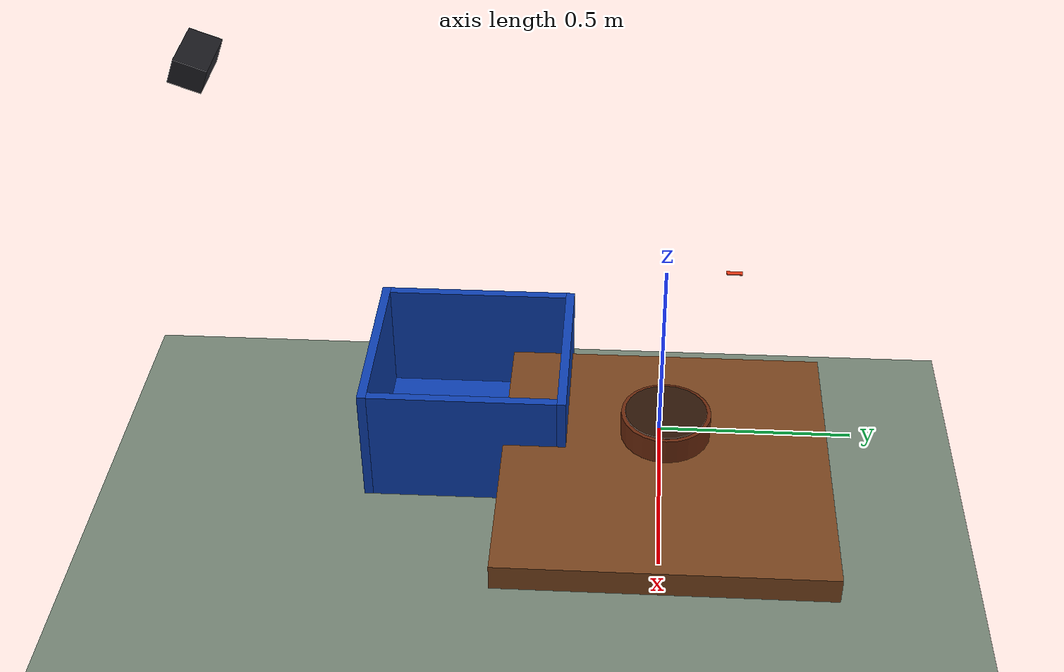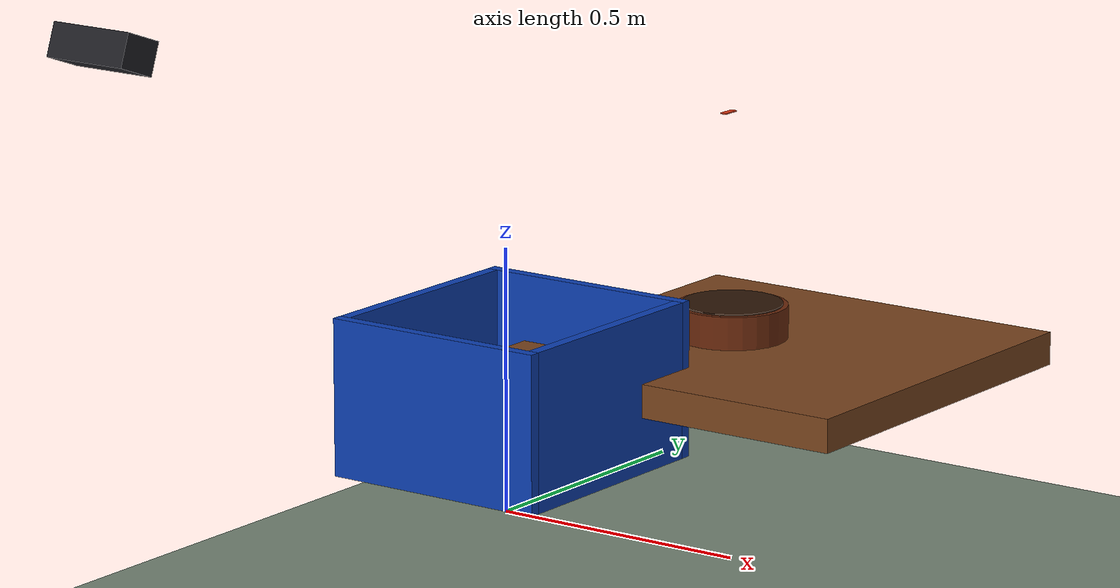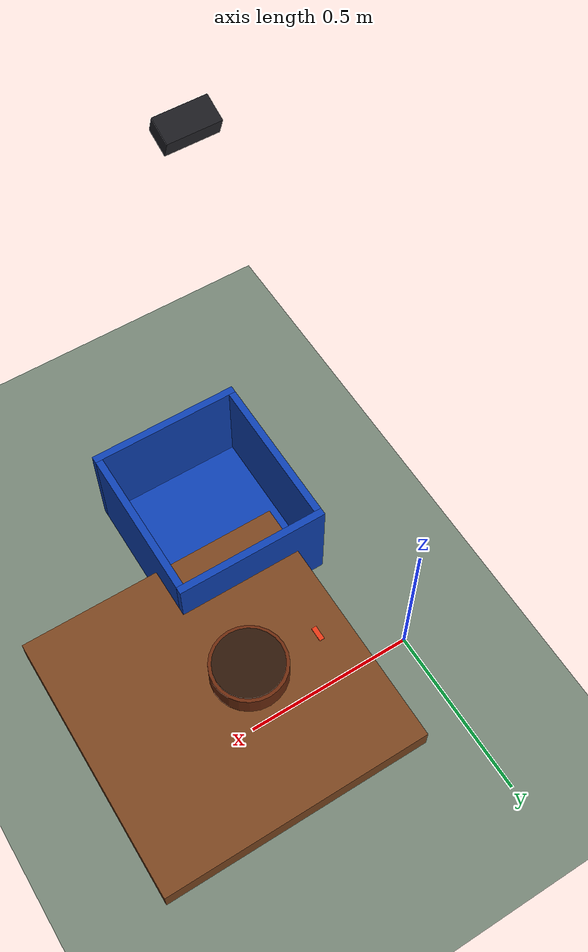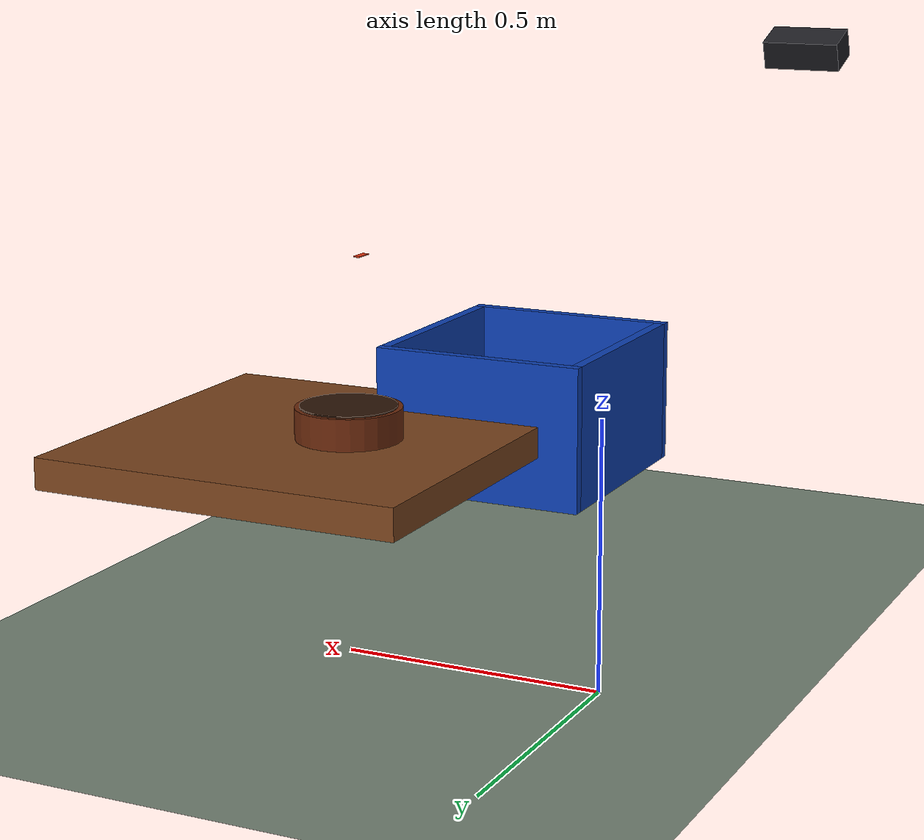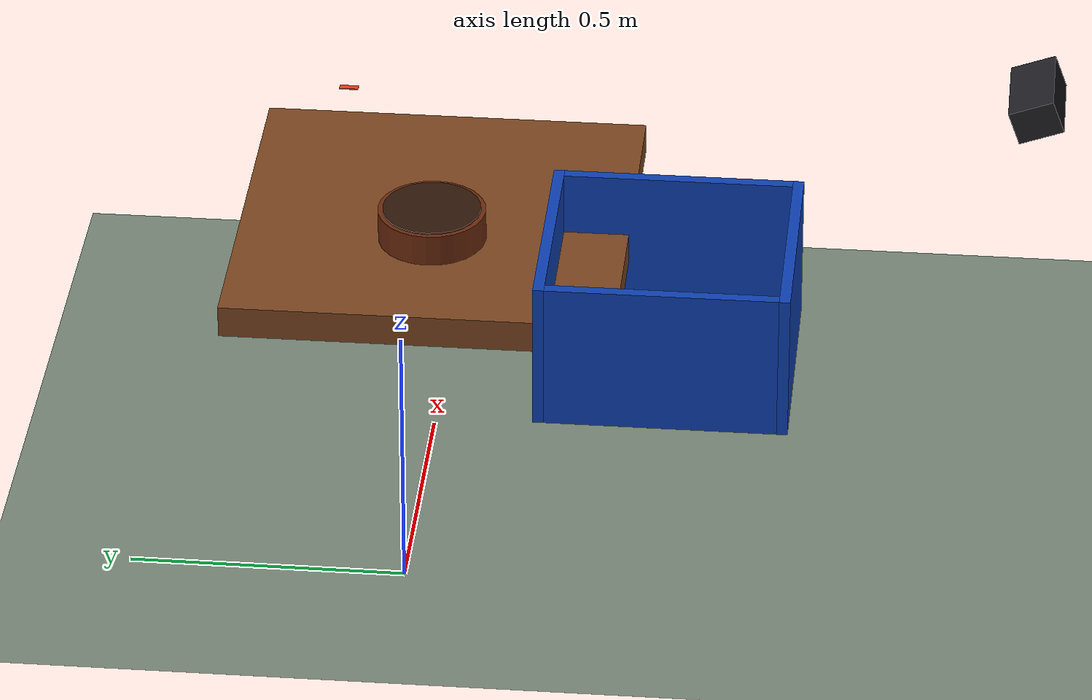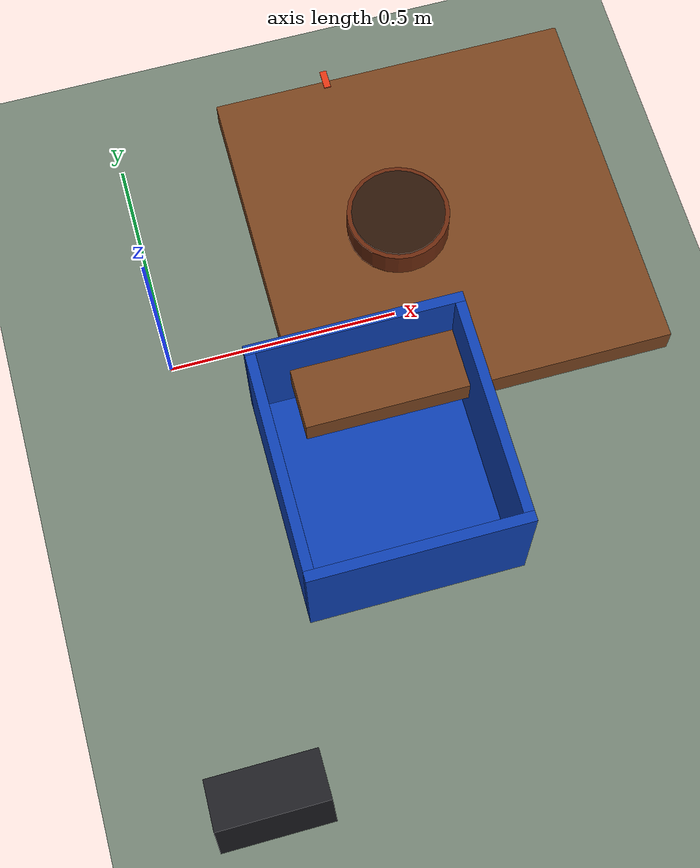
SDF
<sdf version="1.10">
 <world name="strawberry_orchard">
  <physics name="1ms" type="dart">
   <max_step_size>0.001</max_step_size>
   <real_time_factor>1.0</real_time_factor>
  </physics>
  <plugin filename="gz-sim-physics-system" name="gz::sim::systems::Physics"/>
  <plugin filename="gz-sim-user-commands-system" name="gz::sim::systems::UserCommands"/>
  <plugin filename="gz-sim-scene-broadcaster-system" name="gz::sim::systems::SceneBroadcaster"/>
  <plugin filename="gz-sim-sensors-system" name="gz::sim::systems::Sensors">
   <render_engine>ogre2</render_engine>
  </plugin>
  <plugin filename="gz-sim-contact-system" name="gz::sim::systems::Contact"/>
  <scene>
   <ambient>0.45 0.45 0.45 1</ambient>
   <background>0.72 0.80 0.88 1</background>
   <shadows>true</shadows>
  </scene>
  <light type="directional" name="sun">
   <pose>0 0 6 0 0 0</pose>
   <diffuse>0.90 0.90 0.90 1</diffuse>
   <specular>0.25 0.25 0.25 1</specular>
   <attenuation>
    <range>100</range>
    <constant>0.9</constant>
    <linear>0.01</linear>
    <quadratic>0.001</quadratic>
   </attenuation>
   <direction>-0.4 0.2 -0.9</direction>
  </light>
  <model name="ground_plane">
   <static>true</static>
   <link name="ground_link">
    <collision name="ground_collision">
     <geometry><plane><normal>0 0 1</normal><size>8 8</size></plane></geometry>
    </collision>
    <visual name="ground_visual">
     <geometry><plane><normal>0 0 1</normal><size>8 8</size></plane></geometry>
     <material><ambient>0.30 0.34 0.30 1</ambient><diffuse>0.46 0.52 0.46 1</diffuse></material>
    </visual>
   </link>
  </model>
  <model name="work_table">
   <static>true</static>
   <link name="table_link">
    <collision name="table_collision">
     <pose>0.58 0 0.38 0 0 0</pose>
     <geometry><box><size>0.72 0.72 0.06</size></box></geometry>
    </collision>
    <visual name="table_visual">
     <pose>0.58 0 0.38 0 0 0</pose>
     <geometry><box><size>0.72 0.72 0.06</size></box></geometry>
     <material><ambient>0.24 0.13 0.06 1</ambient><diffuse>0.48 0.27 0.12 1</diffuse></material>
    </visual>
   </link>
  </model>
  <include>
   <uri>model://rgbd_camera</uri>
   <name>strawberry_rgbd_camera</name>
   <pose>0 -1.10 1.05 0 0.35 1.5707963268</pose>
  </include>
  <include><uri>model://collection_bin</uri><name>collection_bin</name></include>
  <model name="strawberry_planter">
   <static>true</static>
   <link name="planter_link">
    <collision name="planter_collision">
     <pose>0.50 0 0.44 0 0 0</pose>
     <geometry><cylinder><radius>0.10</radius><length>0.06</length></cylinder></geometry>
    </collision>
    <visual name="planter_visual">
     <pose>0.50 0 0.44 0 0 0</pose>
     <geometry><cylinder><radius>0.10</radius><length>0.06</length></cylinder></geometry>
     <material><ambient>0.20 0.08 0.025 1</ambient><diffuse>0.42 0.16 0.05 1</diffuse></material>
    </visual>
    <visual name="soil_visual">
     <pose>0.50 0 0.471 0 0 0</pose>
     <geometry><cylinder><radius>0.091</radius><length>0.004</length></cylinder></geometry>
     <material><ambient>0.08 0.045 0.02 1</ambient><diffuse>0.18 0.09 0.035 1</diffuse></material>
    </visual>
   </link>
  </model>
  <model name="development_candidate_challenge_obstacle">
   <static>true</static>
   <pose>0.397000000 0.135000000 0.780000000 0 0 0</pose>
   <link name="obstacle_link">
    <collision name="obstacle_collision">
     <geometry><box><size>0.012000000 0.034000000 0.002000000</size></box></geometry>
    </collision>
    <visual name="obstacle_visual">
     <geometry><box><size>0.012000000 0.034000000 0.002000000</size></box></geometry>
     <material><ambient>0.75 0.15 0.05 1</ambient><diffuse>0.90 0.22 0.08 1</diffuse></material>
    </visual>
   </link>
  </model>
 </world>
</sdf>

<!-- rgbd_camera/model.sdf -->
<sdf version="1.10">
  <model name="strawberry_rgbd_camera">
    <static>true</static>
    <link name="strawberry_camera_link">
      <visual name="housing_visual">
        <geometry><box><size>0.08 0.16 0.06</size></box></geometry>
        <material><ambient>0.06 0.06 0.07 1</ambient><diffuse>0.12 0.12 0.14 1</diffuse></material>
      </visual>
      <sensor name="rgbd" type="rgbd_camera">
        <camera>
          <horizontal_fov>1.0471975512</horizontal_fov>
          <image>
            <width>640</width>
            <height>480</height>
            <format>R8G8B8</format>
          </image>
          <clip>
            <near>0.10</near>
            <far>5.0</far>
          </clip>
          <optical_frame_id>strawberry_camera_optical_frame</optical_frame_id>
        </camera>
        <always_on>true</always_on>
        <update_rate>30</update_rate>
        <visualize>true</visualize>
        <topic>/camera</topic>
        <gz_frame_id>strawberry_camera_optical_frame</gz_frame_id>
      </sensor>
    </link>
  </model>
</sdf>

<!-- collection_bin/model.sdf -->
<sdf version="1.10">
  <model name="collection_bin">
    <static>true</static>
    <link name="bin_link">
      <collision name="floor_collision">
        <pose>0.35 -0.45 0.26 0 0 0</pose>
        <geometry><box><size>0.38 0.42 0.02</size></box></geometry>
      </collision>
      <visual name="floor_visual">
        <pose>0.35 -0.45 0.26 0 0 0</pose>
        <geometry><box><size>0.38 0.42 0.02</size></box></geometry>
        <material><ambient>0.03 0.12 0.35 1</ambient><diffuse>0.05 0.25 0.70 1</diffuse></material>
      </visual>

      <collision name="left_wall_collision">
        <pose>0.15 -0.45 0.39 0 0 0</pose>
        <geometry><box><size>0.02 0.42 0.28</size></box></geometry>
      </collision>
      <visual name="left_wall_visual">
        <pose>0.15 -0.45 0.39 0 0 0</pose>
        <geometry><box><size>0.02 0.42 0.28</size></box></geometry>
        <material><ambient>0.03 0.12 0.35 1</ambient><diffuse>0.05 0.25 0.70 1</diffuse></material>
      </visual>

      <collision name="right_wall_collision">
        <pose>0.55 -0.45 0.39 0 0 0</pose>
        <geometry><box><size>0.02 0.42 0.28</size></box></geometry>
      </collision>
      <visual name="right_wall_visual">
        <pose>0.55 -0.45 0.39 0 0 0</pose>
        <geometry><box><size>0.02 0.42 0.28</size></box></geometry>
        <material><ambient>0.03 0.12 0.35 1</ambient><diffuse>0.05 0.25 0.70 1</diffuse></material>
      </visual>

      <collision name="front_wall_collision">
        <pose>0.35 -0.67 0.39 0 0 0</pose>
        <geometry><box><size>0.42 0.02 0.28</size></box></geometry>
      </collision>
      <visual name="front_wall_visual">
        <pose>0.35 -0.67 0.39 0 0 0</pose>
        <geometry><box><size>0.42 0.02 0.28</size></box></geometry>
        <material><ambient>0.03 0.12 0.35 1</ambient><diffuse>0.05 0.25 0.70 1</diffuse></material>
      </visual>

      <collision name="back_wall_collision">
        <pose>0.35 -0.23 0.39 0 0 0</pose>
        <geometry><box><size>0.42 0.02 0.28</size></box></geometry>
      </collision>
      <visual name="back_wall_visual">
        <pose>0.35 -0.23 0.39 0 0 0</pose>
        <geometry><box><size>0.42 0.02 0.28</size></box></geometry>
        <material><ambient>0.03 0.12 0.35 1</ambient><diffuse>0.05 0.25 0.70 1</diffuse></material>
      </visual>
    </link>
  </model>
</sdf>
